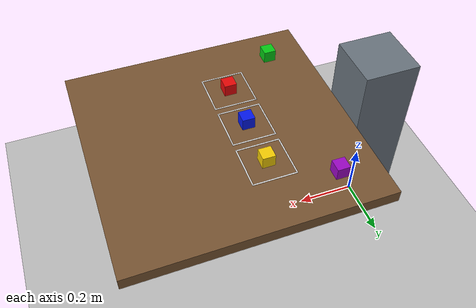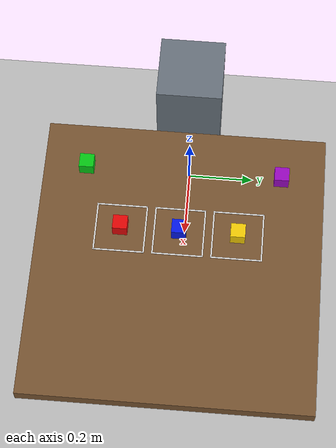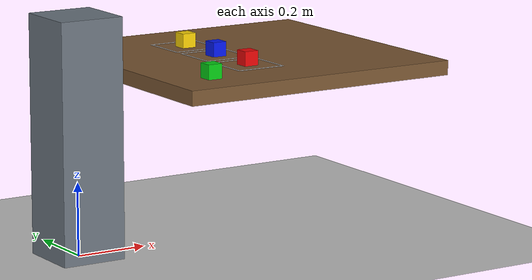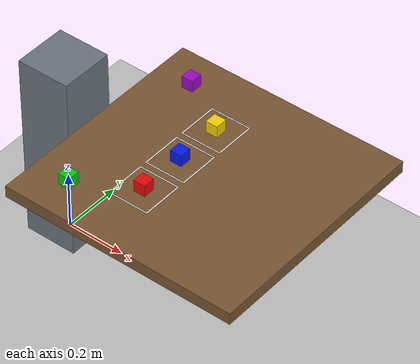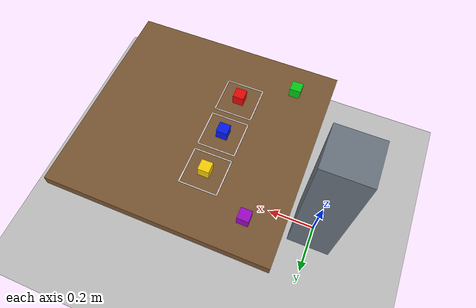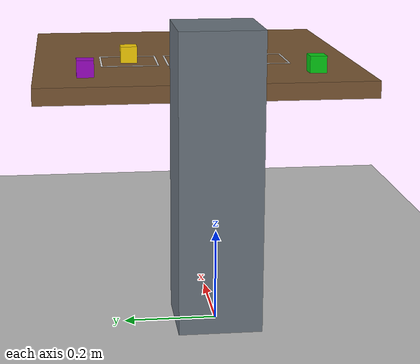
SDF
<?xml version="1.0"?>
<sdf version="1.6">
  <world name="default">
    <gravity>0 0 -9.8</gravity>
    <physics name="physics" type="ignored"><max_step_size>0.001</max_step_size><real_time_factor>1</real_time_factor></physics>
    <plugin filename="ignition-gazebo-physics-system" name="ignition::gazebo::systems::Physics"/>
    <plugin filename="ignition-gazebo-user-commands-system" name="ignition::gazebo::systems::UserCommands"/>
    <plugin filename="ignition-gazebo-scene-broadcaster-system" name="ignition::gazebo::systems::SceneBroadcaster"/>
    <plugin filename="ignition-gazebo-sensors-system" name="ignition::gazebo::systems::Sensors"><render_engine>ogre</render_engine></plugin>
    <scene><ambient>0.6 0.6 0.6 1</ambient><background>0.85 0.88 0.92 1</background><shadows>true</shadows></scene>
    <light name="sun" type="directional"><pose>0 0 4 0 0 0</pose><cast_shadows>true</cast_shadows>
      <diffuse>0.8 0.8 0.8 1</diffuse><specular>0.15 0.15 0.15 1</specular><direction>-0.4 0.3 -1</direction></light>
    <model name="ground_plane"><static>true</static><link name="link">
      <collision name="collision"><geometry><plane><normal>0 0 1</normal><size>10 10</size></plane></geometry></collision>
      <visual name="visual"><geometry><plane><normal>0 0 1</normal><size>10 10</size></plane></geometry>
        <material><ambient>0.75 0.75 0.75 1</ambient><diffuse>0.75 0.75 0.75 1</diffuse></material></visual>
    </link></model>
  <include><uri>model://robot_pedestal</uri><name>robot_pedestal</name><pose>0 0 0.325 0 0 0</pose></include>
  <include><uri>model://work_table</uri><name>work_table</name><pose>0.52 0 0.48 0 0 0</pose></include>
  <include><uri>model://zone_marker</uri><name>zone_a_marker</name><pose>0.43 -0.16 0.501 0 0 0</pose></include>
  <include><uri>model://zone_marker</uri><name>zone_b_marker</name><pose>0.43 0 0.501 0 0 0</pose></include>
  <include><uri>model://zone_marker</uri><name>zone_c_marker</name><pose>0.43 0.16 0.501 0 0 0</pose></include>
  <include><uri>model://red_cube</uri><name>red_cube</name><pose>0.43 -0.16 0.52 0 0 0</pose></include>
  <include><uri>model://blue_cube</uri><name>blue_cube</name><pose>0.43 0 0.52 0 0 0</pose></include>
  <include><uri>model://yellow_cube</uri><name>yellow_cube</name><pose>0.43 0.16 0.52 0 0 0</pose></include>
  <include><uri>model://green_cube</uri><name>green_cube</name><pose>0.25 -0.27 0.52 0 0 0</pose></include>
  <include><uri>model://purple_cube</uri><name>purple_cube</name><pose>0.25 0.27 0.52 0 0 0</pose></include>
  <include><uri>model://overhead_camera</uri><name>overhead_camera</name><pose>1.1 0 1.4 0 0.979 3.14159265359</pose></include>
  </world>
</sdf>

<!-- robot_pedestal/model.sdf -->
<sdf version="1.6"><model name="robot_pedestal"><static>true</static><link name="pedestal"><collision name="collision"><geometry><box><size>0.18 0.18 0.65</size></box></geometry></collision><visual name="visual"><geometry><box><size>0.18 0.18 0.65</size></box></geometry><material><ambient>0.35 0.38 0.42 1</ambient><diffuse>0.42 0.46 0.50 1</diffuse></material></visual></link></model></sdf>

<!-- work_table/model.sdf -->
<sdf version="1.6"><model name="work_table"><static>true</static><link name="link">
  <collision name="collision"><geometry><box><size>0.80 0.78 0.04</size></box></geometry></collision>
  <visual name="visual"><geometry><box><size>0.80 0.78 0.04</size></box></geometry>
    <material><ambient>0.34 0.25 0.16 1</ambient><diffuse>0.48 0.34 0.20 1</diffuse></material>
  </visual>
</link></model></sdf>

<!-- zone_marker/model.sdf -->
<sdf version="1.6"><model name="zone_marker"><static>true</static><link name="marker">
  <visual name="north"><pose>0 0.068 0 0 0 0</pose><geometry><box><size>0.14 0.004 0.001</size></box></geometry><material><ambient>0.93 0.93 0.93 1</ambient><diffuse>0.93 0.93 0.93 1</diffuse></material></visual>
  <visual name="south"><pose>0 -0.068 0 0 0 0</pose><geometry><box><size>0.14 0.004 0.001</size></box></geometry><material><ambient>0.93 0.93 0.93 1</ambient><diffuse>0.93 0.93 0.93 1</diffuse></material></visual>
  <visual name="east"><pose>0.068 0 0 0 0 0</pose><geometry><box><size>0.004 0.14 0.001</size></box></geometry><material><ambient>0.93 0.93 0.93 1</ambient><diffuse>0.93 0.93 0.93 1</diffuse></material></visual>
  <visual name="west"><pose>-0.068 0 0 0 0 0</pose><geometry><box><size>0.004 0.14 0.001</size></box></geometry><material><ambient>0.93 0.93 0.93 1</ambient><diffuse>0.93 0.93 0.93 1</diffuse></material></visual>
</link></model></sdf>

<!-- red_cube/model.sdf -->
<sdf version="1.6">
  <model name="red_cube">
    <static>false</static>
    <link name="link">
      <inertial>
        <mass>0.05</mass>
        <inertia>
          <ixx>1.333333e-5</ixx><iyy>1.333333e-5</iyy><izz>1.333333e-5</izz>
          <ixy>0</ixy><ixz>0</ixz><iyz>0</iyz>
        </inertia>
      </inertial>
      <collision name="collision">
        <geometry><box><size>0.04 0.04 0.04</size></box></geometry>
        <surface>
          <friction><ode><mu>1.2</mu><mu2>1.2</mu2></ode></friction>
          <contact><ode><kp>100000</kp><kd>10</kd></ode></contact>
        </surface>
      </collision>
      <visual name="visual">
        <geometry><box><size>0.04 0.04 0.04</size></box></geometry>
        <material>
          <ambient>0.92 0.025 0.025 1</ambient><diffuse>0.92 0.025 0.025 1</diffuse><specular>0.1 0.1 0.1 1</specular>
        </material>
      </visual>
    </link>
  </model>
</sdf>

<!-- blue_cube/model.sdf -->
<sdf version="1.6">
  <model name="blue_cube">
    <static>false</static>
    <link name="link">
      <inertial>
        <mass>0.05</mass>
        <inertia>
          <ixx>1.333333e-5</ixx><iyy>1.333333e-5</iyy><izz>1.333333e-5</izz>
          <ixy>0</ixy><ixz>0</ixz><iyz>0</iyz>
        </inertia>
      </inertial>
      <collision name="collision">
        <geometry><box><size>0.04 0.04 0.04</size></box></geometry>
        <surface>
          <friction><ode><mu>1.2</mu><mu2>1.2</mu2></ode></friction>
          <contact><ode><kp>100000</kp><kd>10</kd></ode></contact>
        </surface>
      </collision>
      <visual name="visual">
        <geometry><box><size>0.04 0.04 0.04</size></box></geometry>
        <material>
          <ambient>0.02 0.10 0.94 1</ambient><diffuse>0.02 0.10 0.94 1</diffuse><specular>0.1 0.1 0.1 1</specular>
        </material>
      </visual>
    </link>
  </model>
</sdf>

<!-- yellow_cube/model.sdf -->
<sdf version="1.6">
  <model name="yellow_cube">
    <static>false</static>
    <link name="link">
      <inertial>
        <mass>0.05</mass>
        <inertia>
          <ixx>1.333333e-5</ixx><iyy>1.333333e-5</iyy><izz>1.333333e-5</izz>
          <ixy>0</ixy><ixz>0</ixz><iyz>0</iyz>
        </inertia>
      </inertial>
      <collision name="collision">
        <geometry><box><size>0.04 0.04 0.04</size></box></geometry>
        <surface>
          <friction><ode><mu>1.2</mu><mu2>1.2</mu2></ode></friction>
          <contact><ode><kp>100000</kp><kd>10</kd></ode></contact>
        </surface>
      </collision>
      <visual name="visual">
        <geometry><box><size>0.04 0.04 0.04</size></box></geometry>
        <material>
          <ambient>0.98 0.82 0.015 1</ambient><diffuse>0.98 0.82 0.015 1</diffuse><specular>0.1 0.1 0.1 1</specular>
        </material>
      </visual>
    </link>
  </model>
</sdf>

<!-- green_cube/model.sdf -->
<sdf version="1.6">
  <model name="green_cube">
    <static>false</static>
    <link name="link">
      <inertial>
        <mass>0.05</mass>
        <inertia>
          <ixx>1.333333e-5</ixx><iyy>1.333333e-5</iyy><izz>1.333333e-5</izz>
          <ixy>0</ixy><ixz>0</ixz><iyz>0</iyz>
        </inertia>
      </inertial>
      <collision name="collision">
        <geometry><box><size>0.04 0.04 0.04</size></box></geometry>
        <surface>
          <friction><ode><mu>1.2</mu><mu2>1.2</mu2></ode></friction>
          <contact><ode><kp>100000</kp><kd>10</kd></ode></contact>
        </surface>
      </collision>
      <visual name="visual">
        <geometry><box><size>0.04 0.04 0.04</size></box></geometry>
        <material>
          <ambient>0.02 0.80 0.08 1</ambient><diffuse>0.02 0.80 0.08 1</diffuse><specular>0.1 0.1 0.1 1</specular>
        </material>
      </visual>
    </link>
  </model>
</sdf>

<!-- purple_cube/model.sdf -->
<sdf version="1.6">
  <model name="purple_cube">
    <static>false</static>
    <link name="link">
      <inertial>
        <mass>0.05</mass>
        <inertia>
          <ixx>1.333333e-5</ixx><iyy>1.333333e-5</iyy><izz>1.333333e-5</izz>
          <ixy>0</ixy><ixz>0</ixz><iyz>0</iyz>
        </inertia>
      </inertial>
      <collision name="collision">
        <geometry><box><size>0.04 0.04 0.04</size></box></geometry>
        <surface>
          <friction><ode><mu>1.2</mu><mu2>1.2</mu2></ode></friction>
          <contact><ode><kp>100000</kp><kd>10</kd></ode></contact>
        </surface>
      </collision>
      <visual name="visual">
        <geometry><box><size>0.04 0.04 0.04</size></box></geometry>
        <material>
          <ambient>0.62 0.03 0.78 1</ambient><diffuse>0.62 0.03 0.78 1</diffuse><specular>0.1 0.1 0.1 1</specular>
        </material>
      </visual>
    </link>
  </model>
</sdf>

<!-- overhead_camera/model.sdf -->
<sdf version="1.6"><model name="overhead_camera"><static>true</static><link name="camera_link">
  <sensor name="overhead_rgb" type="camera">
    <always_on>true</always_on><update_rate>10</update_rate><visualize>true</visualize>
    <topic>/camera/image</topic>
    <camera>
      <horizontal_fov>1.20</horizontal_fov>
      <image><width>480</width><height>360</height><format>R8G8B8</format></image>
      <clip><near>0.08</near><far>4.0</far></clip>
    </camera>
  </sensor>
</link></model></sdf>
